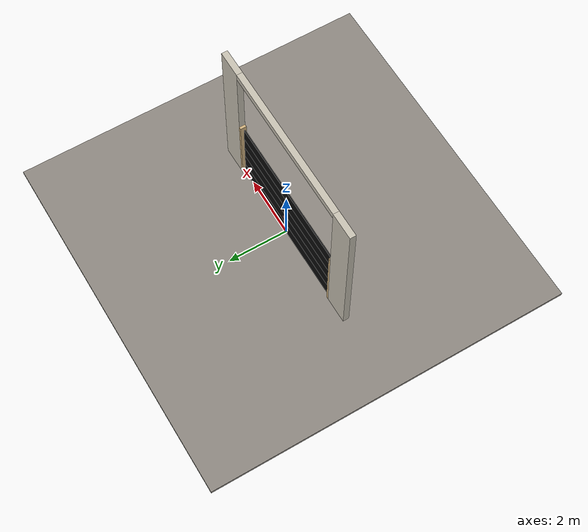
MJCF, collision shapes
<?xml version="1.0" ?>
<mujoco model="db0730_garage_sectional_minimal">
  <compiler angle="radian" meshdir="../../hardware" texturedir="../../textures" autolimits="true" inertiafromgeom="false"/>
  <option timestep="0.002" integrator="implicitfast" cone="elliptic" impratio="10" noslip_iterations="3">
    <flag multiccd="enable"/>
  </option>
  <size memory="16M"/>
  <default>
    <geom condim="4" solref="0.005 1" solimp="0.95 0.99 0.001"/>
    <joint solreflimit="0.005 1" solimplimit="0.95 0.99 0.001"/>
    <tendon solreflimit="0.005 1"/>
    <equality solref="0.002 1"/>
  </default>
  <visual>
    <headlight ambient="0.4 0.4 0.4" diffuse="0.7 0.7 0.7" specular="0.2 0.2 0.2"/>
    <quality shadowsize="4096"/>
    <map znear="0.01" zfar="60"/>
  </visual>
  <asset>
    <mesh name="pull_bdc5e965ab" file="pull_bdc5e965ab.obj"/>
    <material name="mat_floor" rgba="0.55 0.53 0.5 1" specular="0.2" shininess="0.15" reflectance="0"/>
    <material name="mat_wall" rgba="0.78 0.76 0.7 1" specular="0.2" shininess="0.1" reflectance="0"/>
    <material name="mat_frame" rgba="0.82 0.7 0.5 1" specular="0.2" shininess="0.45" reflectance="0"/>
    <material name="mat_track" rgba="0.65 0.66 0.68 1" specular="0.74" shininess="0.5" reflectance="0.36"/>
    <material name="mat_section_0" rgba="0.04 0.04 0.04 1" specular="0.23" shininess="0.38" reflectance="0.02"/>
    <material name="mat_section_0_panel" rgba="0.037 0.037 0.037 1" specular="0.23" shininess="0.38" reflectance="0.02"/>
    <material name="mat_section_1" rgba="0.04 0.04 0.04 1" specular="0.23" shininess="0.38" reflectance="0.02"/>
    <material name="mat_section_1_panel" rgba="0.037 0.037 0.037 1" specular="0.23" shininess="0.38" reflectance="0.02"/>
    <material name="mat_hinge_line" rgba="0.2 0.2 0.2 1" specular="0.2" shininess="0.3" reflectance="0"/>
    <material name="mat_section_2" rgba="0.04 0.04 0.04 1" specular="0.23" shininess="0.38" reflectance="0.02"/>
    <material name="mat_section_2_panel" rgba="0.037 0.037 0.037 1" specular="0.23" shininess="0.38" reflectance="0.02"/>
    <material name="mat_section_3" rgba="0.04 0.04 0.04 1" specular="0.23" shininess="0.38" reflectance="0.02"/>
    <material name="mat_section_3_panel" rgba="0.037 0.037 0.037 1" specular="0.23" shininess="0.38" reflectance="0.02"/>
    <material name="mat_section_4" rgba="0.04 0.04 0.04 1" specular="0.23" shininess="0.38" reflectance="0.02"/>
    <material name="mat_section_4_panel" rgba="0.037 0.037 0.037 1" specular="0.23" shininess="0.38" reflectance="0.02"/>
    <material name="mat_spring" rgba="0.55 0.56 0.58 1" specular="0.8" shininess="0.55" reflectance="0.4"/>
    <material name="mat_op_black_matte_metal" rgba="0.05 0.05 0.05 1" specular="0.38" shininess="0.3" reflectance="0.12"/>
    <texture name="skybox" type="skybox" builtin="gradient" rgb1="0.6 0.7 0.85" rgb2="0.9 0.92 0.95" width="256" height="256"/>
  </asset>
  <worldbody>
    <light name="sun" pos="1.5 -2.5 4" dir="-0.3 0.5 -0.8" directional="true" diffuse="0.8 0.8 0.8" specular="0.3 0.3 0.3" castshadow="true"/>
    <light name="fill" pos="-1.5 2.5 3" dir="0.3 -0.5 -0.7" directional="true" diffuse="0.35 0.35 0.4" castshadow="false"/>
    <camera name="robot_view" pos="0 -5.246875 2.714125" xyaxes="1 0 0 0 0.26963 0.962964" fovy="52"/>
    <camera name="far_view" pos="0 5.246875 2.714125" xyaxes="-1 0 0 0 -0.26963 0.962964" fovy="52"/>
    <camera name="iso" pos="3.987625 -4.407375 3.553625" xyaxes="0.741536 0.670913 0 -0.242917 0.268487 0.932151" fovy="46"/>
    <camera name="detail_handle" pos="0.25 -1.1725 1.25" xyaxes="0.975133 0.221621 0 -0.065674 0.288965 0.955084" fovy="38"/>
    <geom name="floor" type="box" size="6 6 0.05" pos="0 0 -0.05" material="mat_floor" group="0" contype="1" conaffinity="1" friction="0.8 0.005 0.0001" density="2400"/>
    <geom name="wall_left" type="box" size="0.4275 0.1 2.615" pos="-3.0125 0 2.615" material="mat_wall" group="0" contype="1" conaffinity="1" friction="0.6 0.005 0.0001" density="800"/>
    <geom name="wall_right" type="box" size="0.4275 0.1 2.615" pos="3.0125 0 2.615" material="mat_wall" group="0" contype="1" conaffinity="1" friction="0.6 0.005 0.0001" density="800"/>
    <geom name="wall_header" type="box" size="2.585 0.1 0.11" pos="0 0 5.12" material="mat_wall" group="0" contype="1" conaffinity="1" friction="0.6 0.005 0.0001" density="800"/>
    <geom name="garage_jamb_l" type="box" size="0.04 0.1 1.245" pos="-2.545 0 1.245" material="mat_frame" group="0" contype="1" conaffinity="1" friction="0.6 0.005 0.0001" density="400"/>
    <geom name="garage_jamb_r" type="box" size="0.04 0.1 1.245" pos="2.545 0 1.245" material="mat_frame" group="0" contype="1" conaffinity="1" friction="0.6 0.005 0.0001" density="400"/>
    <site name="approach_point" pos="0 -2 0" quat="1 0 0 0" size="0.05" rgba="0.2 0.9 0.2 0.5" group="4"/>
    <site name="goal_point" pos="0 2 0" quat="1 0 0 0" size="0.05" rgba="0.2 0.9 0.2 0.5" group="4"/>
    <site name="door_plane_center" pos="0 0 1.245" quat="1 0 0 0" size="0.02" rgba="0.2 0.9 0.2 0.5" group="4"/>
    <body name="door" pos="0 0 0">
      <inertial pos="0 0 1.227445" mass="129.69312" quat="0.707107 -0.707107 0 0" diaginertia="63.981499097 255.418468068 319.347969892"/>
      <joint name="door_slide" type="slide" axis="0 0 1" limited="true" range="0 2.39" damping="8.484656" frictionloss="50.874201" stiffness="135.74637" springref="7.966667" armature="0.5"/>
      <geom name="section_0_slab" type="box" size="2.44 0.0225 0.244" pos="0 0 0.254" material="mat_section_0" group="0" contype="1" conaffinity="1" friction="0.4 0.005 0.0001" density="1"/>
      <geom name="section_1_slab" type="box" size="2.44 0.0225 0.244" pos="0 0 0.742" material="mat_section_1" group="0" contype="1" conaffinity="1" friction="0.4 0.005 0.0001" density="1"/>
      <geom name="section_2_slab" type="box" size="2.44 0.0225 0.244" pos="0 0 1.23" material="mat_section_2" group="0" contype="1" conaffinity="1" friction="0.4 0.005 0.0001" density="1"/>
      <geom name="section_3_slab" type="box" size="2.44 0.0225 0.244" pos="0 0 1.718" material="mat_section_3" group="0" contype="1" conaffinity="1" friction="0.4 0.005 0.0001" density="1"/>
      <geom name="section_4_slab" type="box" size="2.44 0.0225 0.244" pos="0 0 2.206" material="mat_section_4" group="0" contype="1" conaffinity="1" friction="0.4 0.005 0.0001" density="1"/>
      <geom name="lift_handle_n" type="mesh" mesh="pull_bdc5e965ab" pos="0 -0.0225 0.9" quat="0.707107 0.707107 0 0" material="mat_op_black_matte_metal" group="1" contype="0" conaffinity="0" density="3000"/>
      <geom name="lift_handle_col_n" type="box" size="0.1 0.006 0.015" pos="0 -0.0725 0.9" material="mat_op_black_matte_metal" group="3" contype="1" conaffinity="1" rgba="0.8 0.3 0.3 0.25" friction="0.6 0.005 0.0001" density="3000"/>
      <geom name="lift_handle_p" type="mesh" mesh="pull_bdc5e965ab" pos="0 0.0225 0.9" quat="-0.707107 0.707107 0 0" material="mat_op_black_matte_metal" group="1" contype="0" conaffinity="0" density="3000"/>
      <geom name="lift_handle_col_p" type="box" size="0.1 0.006 0.015" pos="0 0.0725 0.9" material="mat_op_black_matte_metal" group="3" contype="1" conaffinity="1" rgba="0.8 0.3 0.3 0.25" friction="0.6 0.005 0.0001" density="3000"/>
      <site name="lift_handle_grip_n" pos="0 -0.0725 0.9" quat="1 0 0 0" size="0.012" rgba="0.2 0.9 0.2 0.5" group="4"/>
      <site name="lift_handle_grip_p" pos="0 0.0725 0.9" quat="1 0 0 0" size="0.012" rgba="0.2 0.9 0.2 0.5" group="4"/>
    </body>
  </worldbody>
  <sensor>
    <jointpos name="door_slide_pos" joint="door_slide"/>
    <jointvel name="door_slide_vel" joint="door_slide"/>
  </sensor>
</mujoco>
